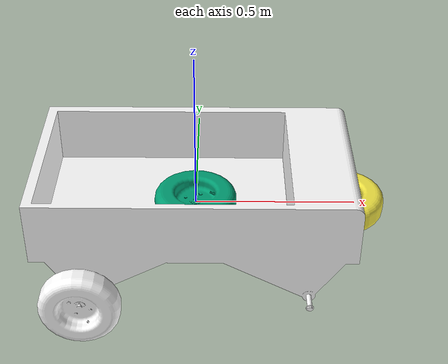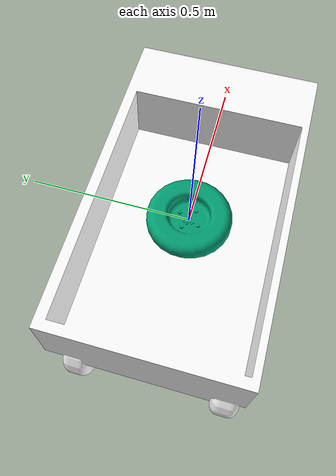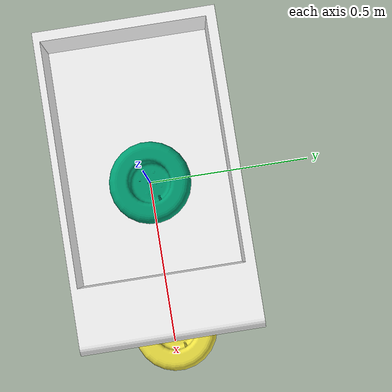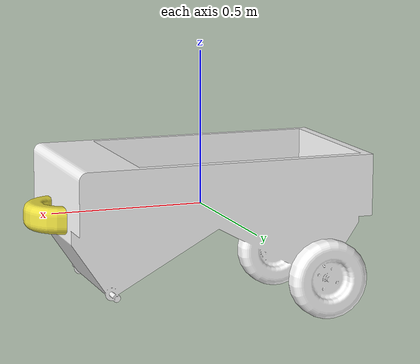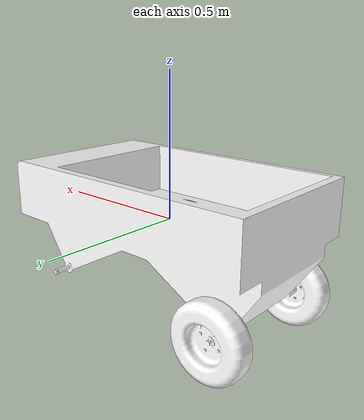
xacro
<?xmal version="1.0"?>
<robot xmlns:xacro='https://ros.org/wiki/xacro' name='urdf_test'>
    <xacro:property name="wheel_diameter" value="0.068"/>
    <xacro:property name="wheel_speration" value="0.180"/>
    <material name="white">
        <color rgba="1 1 1 1" />
    </material>

    <link name = 'base_link'/>

    <joint name = 'body_joint' type='fixed'>
        <parent link='base_link'/>
        <child link = 'robot_body'/>
        <origin xyz="0.0 0.0 0.0" rpy="0.0 0.0 0.0"/>
    </joint>

    <link name="robot_body">
        <visual>
            <origin xyz="0 0 0" rpy="0 0 0"/>
            <geometry>
                <mesh filename="package://description/meshes/robot_b/robot_b_body.stl" scale="0.001 0.001 0.001"/>
            </geometry>
            <material name="white"/>
        </visual>
    </link>

    <joint name="r_wheel_joint" type="continuous">
        <parent link='robot_body'/>
        <child link='r_wheel'/>0
        <origin xyz="0.05 0.168 0.168" rpy="0 -1.57 0"/>
        <axis xyz='0 0 1'/>
    </joint>

    <link name="r_wheel">
        <visual>
            <origin xyz="-0.168 -0.168 0.05" rpy="0 1.57 0"/>
            <geometry>
                <mesh filename="package://description/meshes/robot_b/robot_b_r_wheel.stl" scale="0.001 0.001 0.001"/>
            </geometry>
        </visual>
    </link>

    <joint name="l_wheel_joint" type="continuous">
        <origin xyz="0.50 0.168 0.168" rpy="0 1.57 0"/>
        <parent link="robot_body"/>
        <child link="l_wheel"/>
        <axis xyz='0 0 1'/>
    </joint>

    <link name="l_wheel">
        <visual>
            <origin xyz="0.17 -0.16 -0.038" rpy="0 -1.57 0"/>
                <geometry>
                    <mesh filename="package://description/meshes/robot_b/robot_b_l_wheel.stl" scale="0.001 0.001 0.001"/>
                </geometry>
        </visual>
    </link>

</robot>
